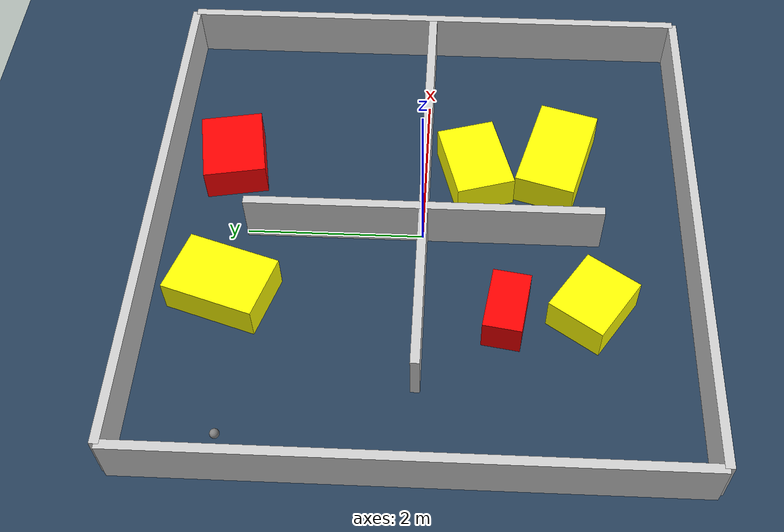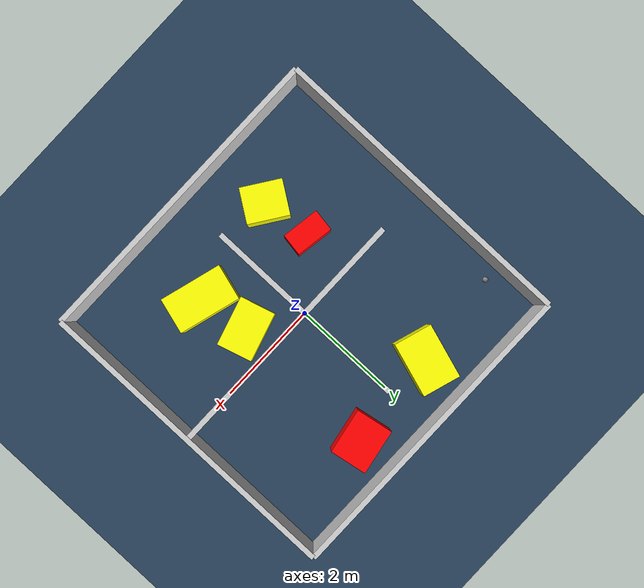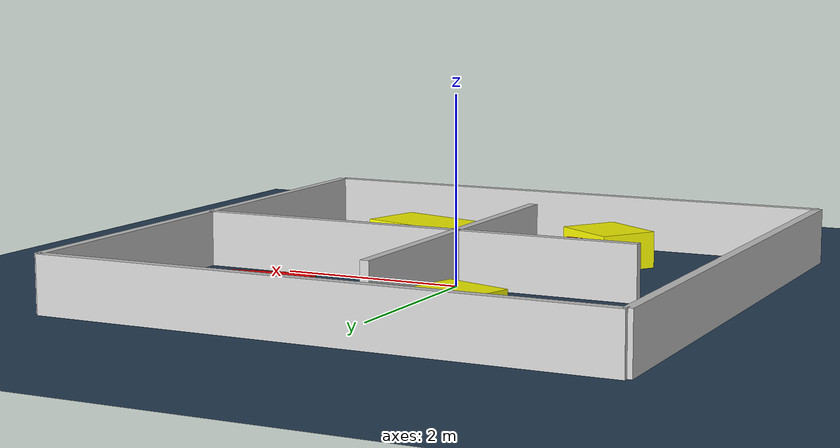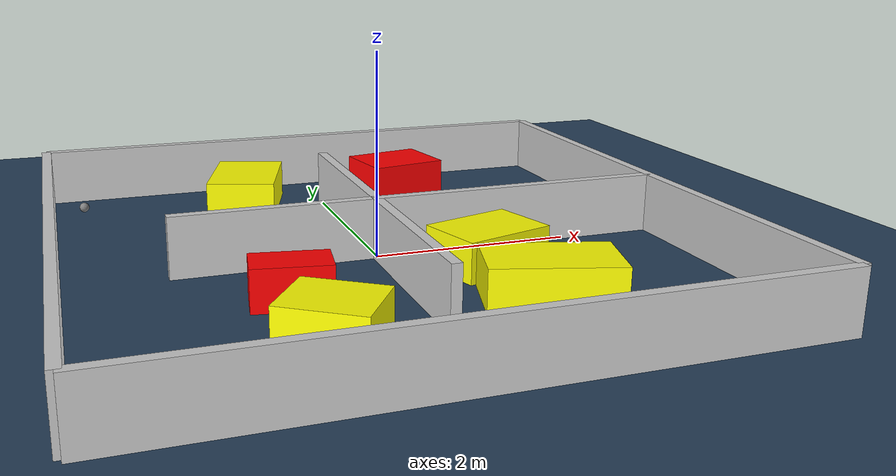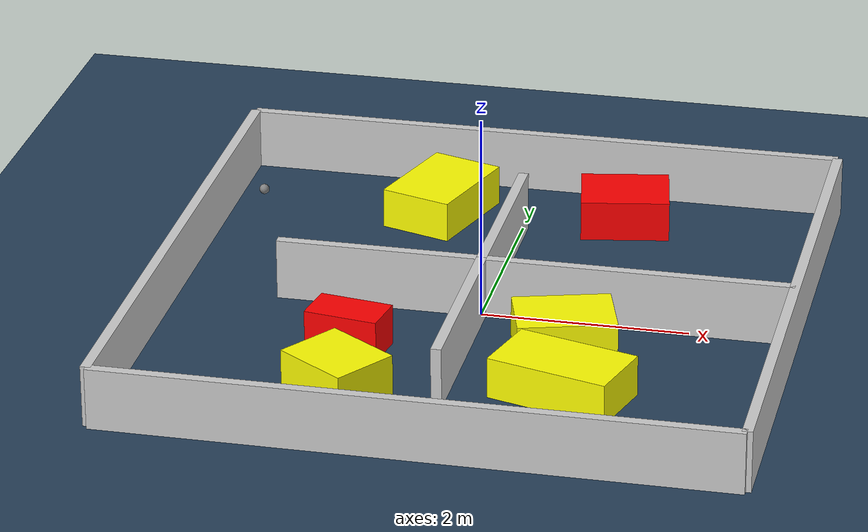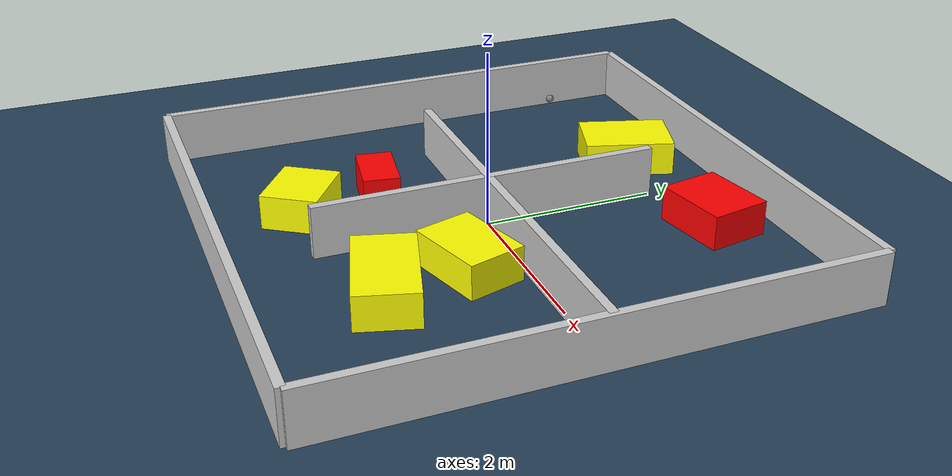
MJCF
<?xml version="1.0" ?>
<mujoco model="generated_environment">
  <option timestep="0.01" integrator="RK4" cone="elliptic"/>
  <default>
    <geom density="1"/>
  </default>
  <asset>
    <texture builtin="gradient" height="3072" rgb1="0.3 0.5 0.7" rgb2="0 0 0" type="skybox" width="512"/>
    <texture builtin="checker" height="300" mark="edge" markrgb="0.8 0.8 0.8" name="groundplane" rgb1="0.2 0.3 0.4" rgb2="0.1 0.2 0.3" type="2d" width="300"/>
    <material name="groundplane" reflectance="0.2" texrepeat="5 5" texture="groundplane" texuniform="true"/>
    <material name="robot" rgba="0.0 1.0 0.0 1"/>
  </asset>
  <worldbody>
    <light dir="0 0 -1" directional="true" pos="0 0 1.5"/>
    <geom condim="4" friction="1.0 0.005 0.001" material="groundplane" name="floor" size="0 0 0.05" type="plane"/>
    <body name="walls">
      <geom name="wall_1" condim="4" pos="-3.0 0.0 0.3" rgba="0.800000011920929 0.800000011920929 0.800000011920929 1.0" size="0.05 3.0 0.3" type="box"/>
      <geom name="wall_2" condim="4" pos="3.0 0.0 0.3" rgba="0.800000011920929 0.800000011920929 0.800000011920929 1.0" size="0.05 3.0 0.3" type="box"/>
      <geom name="wall_3" condim="4" pos="0.0 -3.0 0.3" rgba="0.800000011920929 0.800000011920929 0.800000011920929 1.0" size="3.0 0.05 0.3" type="box"/>
      <geom name="wall_4" condim="4" pos="0.0 3.0 0.3" rgba="0.800000011920929 0.800000011920929 0.800000011920929 1.0" size="3.0 0.05 0.3" type="box"/>
      <geom name="wall_5" condim="4" pos="1.5 0.0 0.3" rgba="0.800000011920929 0.800000011920929 0.800000011920929 1.0" size="1.5 0.05 0.3" type="box"/>
      <geom name="wall_6" condim="4" pos="-1.0 0.0 0.3" rgba="0.800000011920929 0.800000011920929 0.800000011920929 1.0" size="1.0 0.05 0.3" type="box"/>
      <geom name="wall_7" condim="4" pos="0.0 -1.0 0.3" rgba="0.800000011920929 0.800000011920929 0.800000011920929 1.0" size="0.05 1.0 0.3" type="box"/>
      <geom name="wall_8" condim="4" pos="0.0 1.0 0.3" rgba="0.800000011920929 0.800000011920929 0.800000011920929 1.0" size="0.05 1.0 0.3" type="box"/>
    </body>
    <body name="robot">
      <joint name="joint_x" type="slide" pos="0 0 0" axis="1 0 0"/>
      <joint name="joint_y" type="slide" pos="0 0 0" axis="0 1 0"/>
      <geom name="robot" type="sphere" pos="-2.64981757708998 1.959027295640602 0.2" size="0.05" mass="5." friction="1.0 0.005 0.0001" condim="4"/>
      <site name="sensor_ball"/>
    </body>
    <body name="obstacle_1_movable">
      <geom name="obstacle_1_movable" condim="4" pos="-0.9618558234431196 -1.8651174802129058 0.2" euler="0 0 145.5850431184692" friction="1.0 0.005 0.001" rgba="1 1 0 1" size="0.3948990055715986 0.3336206703136959 0.2" type="box" mass="0.1"/>
      <joint type="free"/>
    </body>
    <body name="obstacle_2_movable">
      <geom name="obstacle_2_movable" condim="4" pos="1.0772840887070112 -1.5247201148271452 0.2" euler="0 0 253.925051955178" friction="1.0 0.005 0.001" rgba="1 1 0 1" size="0.3446487861891484 0.5985661700673125 0.2" type="box" mass="0.1"/>
      <joint type="free"/>
    </body>
    <body name="obstacle_3_static">
      <geom name="obstacle_3_static" condim="4" pos="0.9767721588698852 2.2777523965942246 0.2" euler="0 0 100.19297472494925" friction="1.0 0.005 0.001" rgba="1 0 0 1" size="0.3548200229156758 0.437177670106355 0.2" type="box"/>
    </body>
    <body name="obstacle_4_static">
      <geom name="obstacle_4_static" condim="4" pos="-1.0758682971338989 -0.935582394295865 0.2" euler="0 0 80.9390589285723" friction="1.0 0.005 0.001" rgba="1 0 0 1" size="0.21100823137345573 0.36119183449495057 0.2" type="box"/>
    </body>
    <body name="obstacle_5_movable">
      <geom name="obstacle_5_movable" condim="4" pos="0.9102132218177039 -0.5705799200607018 0.2" euler="0 0 16.369146590596703" friction="1.0 0.005 0.001" rgba="1 1 0 1" size="0.47164564996330144 0.33628747608114734 0.2" type="box" mass="0.1"/>
      <joint type="free"/>
    </body>
    <body name="obstacle_6_movable">
      <geom name="obstacle_6_movable" condim="4" pos="-0.8639657111199639 2.1516396473031927 0.2" euler="0 0 252.37833937324868" friction="1.0 0.005 0.001" rgba="1 1 0 1" size="0.5263156653499058 0.36506346920386756 0.2" type="box" mass="0.1"/>
      <joint type="free"/>
    </body>
  </worldbody>
  <actuator>
    <motor name="actuator_x" joint="joint_x" gear="1" ctrlrange="-1 1"/>
    <motor name="actuator_y" joint="joint_y" gear="1" ctrlrange="-1 1"/>
  </actuator>
</mujoco>
